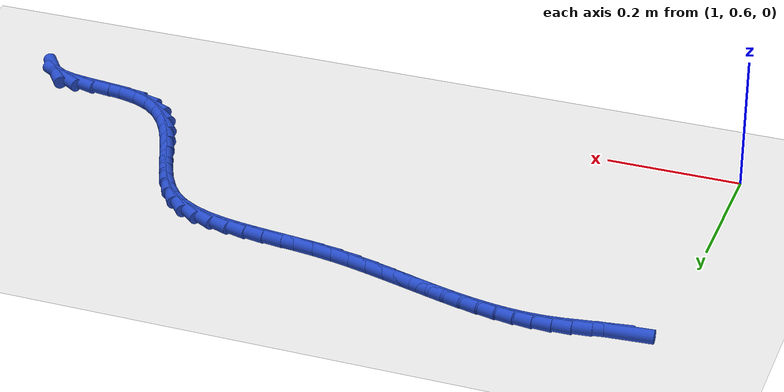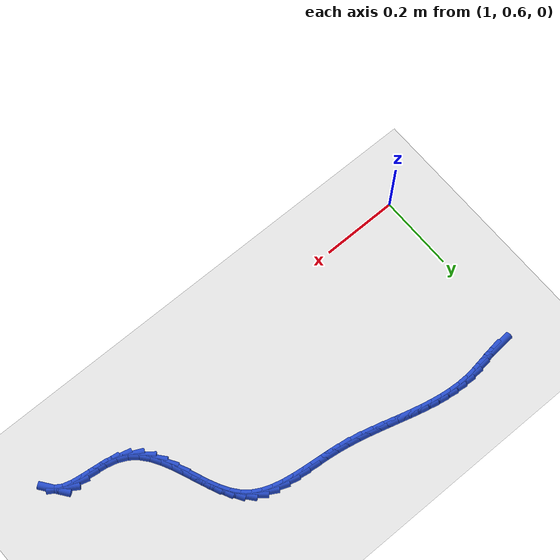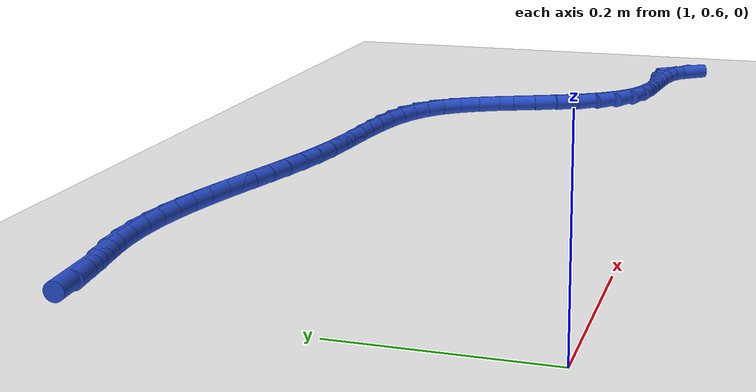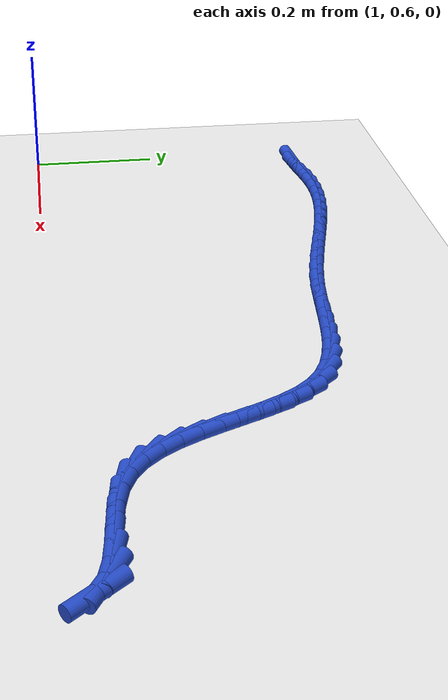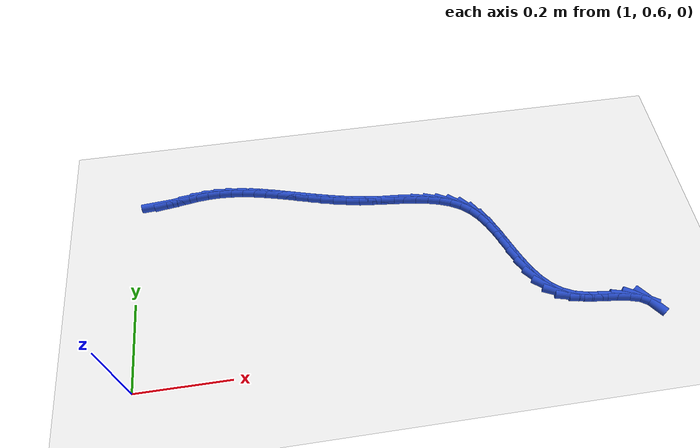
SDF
<sdf version="1.6">
 <world name="default">
  <model name="ground_plane">
   <static>1</static>
   <link name="link">
    <collision name="collision">
     <geometry><plane><normal>0 0 1</normal><size>100 100</size></plane></geometry>
     <surface><friction><ode><mu>100</mu><mu2>50</mu2></ode></friction></surface>
    </collision>
    <visual name="visual">
     <cast_shadows>0</cast_shadows>
     <geometry><plane><normal>0 0 1</normal><size>100 100</size></plane></geometry>
     <material>
      <script><uri>file://media/materials/scripts/gazebo.material</uri><name>Gazebo/WhiteGlow</name></script>
     </material>
    </visual>
   </link>
  </model>
  <model name="line">
   <link name="link_63">
    <pose>1.0494509088871486 1.0484057499562558 0.01 0 1.57 0.07689102487371006</pose>
    <collision name="collision">
     <geometry><cylinder><radius>0.01</radius><length>0.08</length></cylinder></geometry>
    </collision>
    <visual name="visual">
     <material>
      <script><name>Gazebo/Blue</name><uri>file://media/materials/scripts/gazebo.material</uri></script>
     </material>
     <geometry><cylinder><radius>0.01</radius><length>0.08</length></cylinder></geometry>
    </visual>
   </link>
   <link name="link_64">
    <pose>1.0771851384512288 1.0505424758903719 0.01 0 1.57 0.14625126549340506</pose>
    <collision name="collision">
     <geometry><cylinder><radius>0.01</radius><length>0.08</length></cylinder></geometry>
    </collision>
    <visual name="visual">
     <material>
      <script><name>Gazebo/Blue</name><uri>file://media/materials/scripts/gazebo.material</uri></script>
     </material>
     <geometry><cylinder><radius>0.01</radius><length>0.08</length></cylinder></geometry>
    </visual>
   </link>
   <link name="link_65">
    <pose>1.104709875993688 1.054596952545493 0.01 0 1.57 0.1519937386249445</pose>
    <collision name="collision">
     <geometry><cylinder><radius>0.01</radius><length>0.08</length></cylinder></geometry>
    </collision>
    <visual name="visual">
     <material>
      <script><name>Gazebo/Blue</name><uri>file://media/materials/scripts/gazebo.material</uri></script>
     </material>
     <geometry><cylinder><radius>0.01</radius><length>0.08</length></cylinder></geometry>
    </visual>
   </link>
   <link name="link_66">
    <pose>1.131992074109087 1.0587759063722615 0.01 0 1.57 0.09530232501402217</pose>
    <collision name="collision">
     <geometry><cylinder><radius>0.01</radius><length>0.08</length></cylinder></geometry>
    </collision>
    <visual name="visual">
     <material>
      <script><name>Gazebo/Blue</name><uri>file://media/materials/scripts/gazebo.material</uri></script>
     </material>
     <geometry><cylinder><radius>0.01</radius><length>0.08</length></cylinder></geometry>
    </visual>
   </link>
   <link name="link_67">
    <pose>1.1590022559856203 1.0613578611379793 0.01 0 1.57 0.01378947042779266</pose>
    <collision name="collision">
     <geometry><cylinder><radius>0.01</radius><length>0.08</length></cylinder></geometry>
    </collision>
    <visual name="visual">
     <material>
      <script><name>Gazebo/Blue</name><uri>file://media/materials/scripts/gazebo.material</uri></script>
     </material>
     <geometry><cylinder><radius>0.01</radius><length>0.08</length></cylinder></geometry>
    </visual>
   </link>
   <link name="link_68">
    <pose>1.185765928079853 1.0617269413966333 0.01 0 1.57 -0.059820578594192306</pose>
    <collision name="collision">
     <geometry><cylinder><radius>0.01</radius><length>0.08</length></cylinder></geometry>
    </collision>
    <visual name="visual">
     <material>
      <script><name>Gazebo/Blue</name><uri>file://media/materials/scripts/gazebo.material</uri></script>
     </material>
     <geometry><cylinder><radius>0.01</radius><length>0.08</length></cylinder></geometry>
    </visual>
   </link>
   <link name="link_69">
    <pose>1.2123517336011567 1.0601346633514965 0.01 0 1.57 -0.12320681849378456</pose>
    <collision name="collision">
     <geometry><cylinder><radius>0.01</radius><length>0.08</length></cylinder></geometry>
    </collision>
    <visual name="visual">
     <material>
      <script><name>Gazebo/Blue</name><uri>file://media/materials/scripts/gazebo.material</uri></script>
     </material>
     <geometry><cylinder><radius>0.01</radius><length>0.08</length></cylinder></geometry>
    </visual>
   </link>
   <link name="link_70">
    <pose>1.2388294732313987 1.0568558176043839 0.01 0 1.57 -0.17558293454779447</pose>
    <collision name="collision">
     <geometry><cylinder><radius>0.01</radius><length>0.08</length></cylinder></geometry>
    </collision>
    <visual name="visual">
     <material>
      <script><name>Gazebo/Blue</name><uri>file://media/materials/scripts/gazebo.material</uri></script>
     </material>
     <geometry><cylinder><radius>0.01</radius><length>0.08</length></cylinder></geometry>
    </visual>
   </link>
   <link name="link_71">
    <pose>1.265268947652444 1.0521651947571082 0.01 0 1.57 -0.2166939707750178</pose>
    <collision name="collision">
     <geometry><cylinder><radius>0.01</radius><length>0.08</length></cylinder></geometry>
    </collision>
    <visual name="visual">
     <material>
      <script><name>Gazebo/Blue</name><uri>file://media/materials/scripts/gazebo.material</uri></script>
     </material>
     <geometry><cylinder><radius>0.01</radius><length>0.08</length></cylinder></geometry>
    </visual>
   </link>
   <link name="link_72">
    <pose>1.29173995754616 1.046337585411485 0.01 0 1.57 -0.24663272659543328</pose>
    <collision name="collision">
     <geometry><cylinder><radius>0.01</radius><length>0.08</length></cylinder></geometry>
    </collision>
    <visual name="visual">
     <material>
      <script><name>Gazebo/Blue</name><uri>file://media/materials/scripts/gazebo.material</uri></script>
     </material>
     <geometry><cylinder><radius>0.01</radius><length>0.08</length></cylinder></geometry>
    </visual>
   </link>
   <link name="link_73">
    <pose>1.3183123035944124 1.0396477801693271 0.01 0 1.57 -0.2656788623500307</pose>
    <collision name="collision">
     <geometry><cylinder><radius>0.01</radius><length>0.08</length></cylinder></geometry>
    </collision>
    <visual name="visual">
     <material>
      <script><name>Gazebo/Blue</name><uri>file://media/materials/scripts/gazebo.material</uri></script>
     </material>
     <geometry><cylinder><radius>0.01</radius><length>0.08</length></cylinder></geometry>
    </visual>
   </link>
   <link name="link_74">
    <pose>1.3450557864790686 1.0323705696324492 0.01 0 1.57 -0.27418314501500374</pose>
    <collision name="collision">
     <geometry><cylinder><radius>0.01</radius><length>0.08</length></cylinder></geometry>
    </collision>
    <visual name="visual">
     <material>
      <script><name>Gazebo/Blue</name><uri>file://media/materials/scripts/gazebo.material</uri></script>
     </material>
     <geometry><cylinder><radius>0.01</radius><length>0.08</length></cylinder></geometry>
    </visual>
   </link>
   <link name="link_75">
    <pose>1.3720402068819952 1.0247807444026655 0.01 0 1.57 -0.27249920162824226</pose>
    <collision name="collision">
     <geometry><cylinder><radius>0.01</radius><length>0.08</length></cylinder></geometry>
    </collision>
    <visual name="visual">
     <material>
      <script><name>Gazebo/Blue</name><uri>file://media/materials/scripts/gazebo.material</uri></script>
     </material>
     <geometry><cylinder><radius>0.01</radius><length>0.08</length></cylinder></geometry>
    </visual>
   </link>
   <link name="link_76">
    <pose>1.3993353654850578 1.01715309508179 0.01 0 1.57 -0.26095645706120857</pose>
    <collision name="collision">
     <geometry><cylinder><radius>0.01</radius><length>0.08</length></cylinder></geometry>
    </collision>
    <visual name="visual">
     <material>
      <script><name>Gazebo/Blue</name><uri>file://media/materials/scripts/gazebo.material</uri></script>
     </material>
     <geometry><cylinder><radius>0.01</radius><length>0.08</length></cylinder></geometry>
    </visual>
   </link>
   <link name="link_77">
    <pose>1.4270110629701227 1.0097624122716364 0.01 0 1.57 -0.23986630572743528</pose>
    <collision name="collision">
     <geometry><cylinder><radius>0.01</radius><length>0.08</length></cylinder></geometry>
    </collision>
    <visual name="visual">
     <material>
      <script><name>Gazebo/Blue</name><uri>file://media/materials/scripts/gazebo.material</uri></script>
     </material>
     <geometry><cylinder><radius>0.01</radius><length>0.08</length></cylinder></geometry>
    </visual>
   </link>
   <link name="link_78">
    <pose>1.4551371000190574 1.0028834865740195 0.01 0 1.57 -0.20955457035731487</pose>
    <collision name="collision">
     <geometry><cylinder><radius>0.01</radius><length>0.08</length></cylinder></geometry>
    </collision>
    <visual name="visual">
     <material>
      <script><name>Gazebo/Blue</name><uri>file://media/materials/scripts/gazebo.material</uri></script>
     </material>
     <geometry><cylinder><radius>0.01</radius><length>0.08</length></cylinder></geometry>
    </visual>
   </link>
   <link name="link_79">
    <pose>1.4837832773137274 0.996791108590753 0.01 0 1.57 -0.17041409127283405</pose>
    <collision name="collision">
     <geometry><cylinder><radius>0.01</radius><length>0.08</length></cylinder></geometry>
    </collision>
    <visual name="visual">
     <material>
      <script><name>Gazebo/Blue</name><uri>file://media/materials/scripts/gazebo.material</uri></script>
     </material>
     <geometry><cylinder><radius>0.01</radius><length>0.08</length></cylinder></geometry>
    </visual>
   </link>
   <link name="link_80">
    <pose>1.5130193937705272 0.9917600657112566 0.01 0 1.57 -0.12876247739303198</pose>
    <collision name="collision">
     <geometry><cylinder><radius>0.01</radius><length>0.08</length></cylinder></geometry>
    </collision>
    <visual name="visual">
     <material>
      <script><name>Gazebo/Blue</name><uri>file://media/materials/scripts/gazebo.material</uri></script>
     </material>
     <geometry><cylinder><radius>0.01</radius><length>0.08</length></cylinder></geometry>
    </visual>
   </link>
   <link name="link_81">
    <pose>1.5428249680216395 0.9879008743432444 0.01 0 1.57 -0.10558018650871699</pose>
    <collision name="collision">
     <geometry><cylinder><radius>0.01</radius><length>0.08</length></cylinder></geometry>
    </collision>
    <visual name="visual">
     <material>
      <script><name>Gazebo/Blue</name><uri>file://media/materials/scripts/gazebo.material</uri></script>
     </material>
     <geometry><cylinder><radius>0.01</radius><length>0.08</length></cylinder></geometry>
    </visual>
   </link>
   <link name="link_82">
    <pose>1.5728471563177506 0.9847192954357206 0.01 0 1.57 -0.10486026286616132</pose>
    <collision name="collision">
     <geometry><cylinder><radius>0.01</radius><length>0.08</length></cylinder></geometry>
    </collision>
    <visual name="visual">
     <material>
      <script><name>Gazebo/Blue</name><uri>file://media/materials/scripts/gazebo.material</uri></script>
     </material>
     <geometry><cylinder><radius>0.01</radius><length>0.08</length></cylinder></geometry>
    </visual>
   </link>
   <link name="link_83">
    <pose>1.6026566498195347 0.9815819566206825 0.01 0 1.57 -0.12707270273821172</pose>
    <collision name="collision">
     <geometry><cylinder><radius>0.01</radius><length>0.08</length></cylinder></geometry>
    </collision>
    <visual name="visual">
     <material>
      <script><name>Gazebo/Blue</name><uri>file://media/materials/scripts/gazebo.material</uri></script>
     </material>
     <geometry><cylinder><radius>0.01</radius><length>0.08</length></cylinder></geometry>
    </visual>
   </link>
   <link name="link_84">
    <pose>1.6318241396876636 0.9778554855301265 0.01 0 1.57 -0.17435554841187317</pose>
    <collision name="collision">
     <geometry><cylinder><radius>0.01</radius><length>0.08</length></cylinder></geometry>
    </collision>
    <visual name="visual">
     <material>
      <script><name>Gazebo/Blue</name><uri>file://media/materials/scripts/gazebo.material</uri></script>
     </material>
     <geometry><cylinder><radius>0.01</radius><length>0.08</length></cylinder></geometry>
    </visual>
   </link>
   <link name="link_85">
    <pose>1.6599203170828107 0.9729065097960498 0.01 0 1.57 -0.25049032221753276</pose>
    <collision name="collision">
     <geometry><cylinder><radius>0.01</radius><length>0.08</length></cylinder></geometry>
    </collision>
    <visual name="visual">
     <material>
      <script><name>Gazebo/Blue</name><uri>file://media/materials/scripts/gazebo.material</uri></script>
     </material>
     <geometry><cylinder><radius>0.01</radius><length>0.08</length></cylinder></geometry>
    </visual>
   </link>
   <link name="link_86">
    <pose>1.6865158731656498 0.9661016570504487 0.01 0 1.57 -0.3603511647269643</pose>
    <collision name="collision">
     <geometry><cylinder><radius>0.01</radius><length>0.08</length></cylinder></geometry>
    </collision>
    <visual name="visual">
     <material>
      <script><name>Gazebo/Blue</name><uri>file://media/materials/scripts/gazebo.material</uri></script>
     </material>
     <geometry><cylinder><radius>0.01</radius><length>0.08</length></cylinder></geometry>
    </visual>
   </link>
   <link name="link_87">
    <pose>1.711181499096853 0.9568075549253208 0.01 0 1.57 -0.5079301098787188</pose>
    <collision name="collision">
     <geometry><cylinder><radius>0.01</radius><length>0.08</length></cylinder></geometry>
    </collision>
    <visual name="visual">
     <material>
      <script><name>Gazebo/Blue</name><uri>file://media/materials/scripts/gazebo.material</uri></script>
     </material>
     <geometry><cylinder><radius>0.01</radius><length>0.08</length></cylinder></geometry>
    </visual>
   </link>
   <link name="link_88">
    <pose>1.7334878860370946 0.944390831052663 0.01 0 1.57 -0.6919114306796224</pose>
    <collision name="collision">
     <geometry><cylinder><radius>0.01</radius><length>0.08</length></cylinder></geometry>
    </collision>
    <visual name="visual">
     <material>
      <script><name>Gazebo/Blue</name><uri>file://media/materials/scripts/gazebo.material</uri></script>
     </material>
     <geometry><cylinder><radius>0.01</radius><length>0.08</length></cylinder></geometry>
    </visual>
   </link>
   <link name="link_89">
    <pose>1.753006237021707 0.92821881067966 0.01 0 1.57 -0.8831054806427387</pose>
    <collision name="collision">
     <geometry><cylinder><radius>0.01</radius><length>0.08</length></cylinder></geometry>
    </collision>
    <visual name="visual">
     <material>
      <script><name>Gazebo/Blue</name><uri>file://media/materials/scripts/gazebo.material</uri></script>
     </material>
     <geometry><cylinder><radius>0.01</radius><length>0.08</length></cylinder></geometry>
    </visual>
   </link>
   <link name="link_90">
    <pose>1.769585042213328 0.9080367235028199 0.01 0 1.57 -1.0255216980496726</pose>
    <collision name="collision">
     <geometry><cylinder><radius>0.01</radius><length>0.08</length></cylinder></geometry>
    </collision>
    <visual name="visual">
     <material>
      <script><name>Gazebo/Blue</name><uri>file://media/materials/scripts/gazebo.material</uri></script>
     </material>
     <geometry><cylinder><radius>0.01</radius><length>0.08</length></cylinder></geometry>
    </visual>
   </link>
   <link name="link_91">
    <pose>1.7838075968904927 0.8845912381436436 0.01 0 1.57 -1.1174080858749456</pose>
    <collision name="collision">
     <geometry><cylinder><radius>0.01</radius><length>0.08</length></cylinder></geometry>
    </collision>
    <visual name="visual">
     <material>
      <script><name>Gazebo/Blue</name><uri>file://media/materials/scripts/gazebo.material</uri></script>
     </material>
     <geometry><cylinder><radius>0.01</radius><length>0.08</length></cylinder></geometry>
    </visual>
   </link>
   <link name="link_92">
    <pose>1.7963775362458174 0.8587930300760428 0.01 0 1.57 -1.1675629746875387</pose>
    <collision name="collision">
     <geometry><cylinder><radius>0.01</radius><length>0.08</length></cylinder></geometry>
    </collision>
    <visual name="visual">
     <material>
      <script><name>Gazebo/Blue</name><uri>file://media/materials/scripts/gazebo.material</uri></script>
     </material>
     <geometry><cylinder><radius>0.01</radius><length>0.08</length></cylinder></geometry>
    </visual>
   </link>
   <link name="link_93">
    <pose>1.8079984954719195 0.8315527747739289 0.01 0 1.57 -1.182030607912426</pose>
    <collision name="collision">
     <geometry><cylinder><radius>0.01</radius><length>0.08</length></cylinder></geometry>
    </collision>
    <visual name="visual">
     <material>
      <script><name>Gazebo/Blue</name><uri>file://media/materials/scripts/gazebo.material</uri></script>
     </material>
     <geometry><cylinder><radius>0.01</radius><length>0.08</length></cylinder></geometry>
    </visual>
   </link>
   <link name="link_94">
    <pose>1.8193741097614184 0.8037811477112142 0.01 0 1.57 -1.1629986404437453</pose>
    <collision name="collision">
     <geometry><cylinder><radius>0.01</radius><length>0.08</length></cylinder></geometry>
    </collision>
    <visual name="visual">
     <material>
      <script><name>Gazebo/Blue</name><uri>file://media/materials/scripts/gazebo.material</uri></script>
     </material>
     <geometry><cylinder><radius>0.01</radius><length>0.08</length></cylinder></geometry>
    </visual>
   </link>
   <link name="link_95">
    <pose>1.8312080143069305 0.7763888243618104 0.01 0 1.57 -1.1088463126970967</pose>
    <collision name="collision">
     <geometry><cylinder><radius>0.01</radius><length>0.08</length></cylinder></geometry>
    </collision>
    <visual name="visual">
     <material>
      <script><name>Gazebo/Blue</name><uri>file://media/materials/scripts/gazebo.material</uri></script>
     </material>
     <geometry><cylinder><radius>0.01</radius><length>0.08</length></cylinder></geometry>
    </visual>
   </link>
   <link name="link_96">
    <pose>1.8442038443010735 0.7502864801996292 0.01 0 1.57 -1.0145219595493469</pose>
    <collision name="collision">
     <geometry><cylinder><radius>0.01</radius><length>0.08</length></cylinder></geometry>
    </collision>
    <visual name="visual">
     <material>
      <script><name>Gazebo/Blue</name><uri>file://media/materials/scripts/gazebo.material</uri></script>
     </material>
     <geometry><cylinder><radius>0.01</radius><length>0.08</length></cylinder></geometry>
    </visual>
   </link>
   <link name="link_97">
    <pose>1.859065234936465 0.7263847906985821 0.01 0 1.57 -0.8730767634041636</pose>
    <collision name="collision">
     <geometry><cylinder><radius>0.01</radius><length>0.08</length></cylinder></geometry>
    </collision>
    <visual name="visual">
     <material>
      <script><name>Gazebo/Blue</name><uri>file://media/materials/scripts/gazebo.material</uri></script>
     </material>
     <geometry><cylinder><radius>0.01</radius><length>0.08</length></cylinder></geometry>
    </visual>
   </link>
   <link name="link_98">
    <pose>1.8764958214057235 0.7055944313325813 0.01 0 1.57 -0.6807675752432948</pose>
    <collision name="collision">
     <geometry><cylinder><radius>0.01</radius><length>0.08</length></cylinder></geometry>
    </collision>
    <visual name="visual">
     <material>
      <script><name>Gazebo/Blue</name><uri>file://media/materials/scripts/gazebo.material</uri></script>
     </material>
     <geometry><cylinder><radius>0.01</radius><length>0.08</length></cylinder></geometry>
    </visual>
   </link>
   <link name="link_99">
    <pose>1.8971992389014658 0.688826077575538 0.01 0 1.57 -0.44895020461038554</pose>
    <collision name="collision">
     <geometry><cylinder><radius>0.01</radius><length>0.08</length></cylinder></geometry>
    </collision>
    <visual name="visual">
     <material>
      <script><name>Gazebo/Blue</name><uri>file://media/materials/scripts/gazebo.material</uri></script>
     </material>
     <geometry><cylinder><radius>0.01</radius><length>0.08</length></cylinder></geometry>
    </visual>
   </link>
   <link name="link_100">
    <pose>1.9218434087178813 0.6769534785569612 0.01 0 1.57 -0.25369654026603444</pose>
    <collision name="collision">
     <geometry><cylinder><radius>0.01</radius><length>0.08</length></cylinder></geometry>
    </collision>
    <visual name="visual">
     <material>
      <script><name>Gazebo/Blue</name><uri>file://media/materials/scripts/gazebo.material</uri></script>
     </material>
     <geometry><cylinder><radius>0.01</radius><length>0.08</length></cylinder></geometry>
    </visual>
   </link>
   <link name="link_101">
    <pose>1.9499505366237224 0.6696657721501734 0.01 0 1.57 -0.14762970644141452</pose>
    <collision name="collision">
     <geometry><cylinder><radius>0.01</radius><length>0.08</length></cylinder></geometry>
    </collision>
    <visual name="visual">
     <material>
      <script><name>Gazebo/Blue</name><uri>file://media/materials/scripts/gazebo.material</uri></script>
     </material>
     <geometry><cylinder><radius>0.01</radius><length>0.08</length></cylinder></geometry>
    </visual>
   </link>
   <link name="link_102">
    <pose>1.9796813979768142 0.6652444468133586 0.01 0 1.57 -0.11349956246133004</pose>
    <collision name="collision">
     <geometry><cylinder><radius>0.01</radius><length>0.08</length></cylinder></geometry>
    </collision>
    <visual name="visual">
     <material>
      <script><name>Gazebo/Blue</name><uri>file://media/materials/scripts/gazebo.material</uri></script>
     </material>
     <geometry><cylinder><radius>0.01</radius><length>0.08</length></cylinder></geometry>
    </visual>
   </link>
   <link name="link_103">
    <pose>2.00911750839552 0.6618890404878012 0.01 0 1.57 -0.14912410558617173</pose>
    <collision name="collision">
     <geometry><cylinder><radius>0.01</radius><length>0.08</length></cylinder></geometry>
    </collision>
    <visual name="visual">
     <material>
      <script><name>Gazebo/Blue</name><uri>file://media/materials/scripts/gazebo.material</uri></script>
     </material>
     <geometry><cylinder><radius>0.01</radius><length>0.08</length></cylinder></geometry>
    </visual>
   </link>
   <link name="link_104">
    <pose>2.0363403834982043 0.6577990911147856 0.01 0 1.57 -0.27939962281178493</pose>
    <collision name="collision">
     <geometry><cylinder><radius>0.01</radius><length>0.08</length></cylinder></geometry>
    </collision>
    <visual name="visual">
     <material>
      <script><name>Gazebo/Blue</name><uri>file://media/materials/scripts/gazebo.material</uri></script>
     </material>
     <geometry><cylinder><radius>0.01</radius><length>0.08</length></cylinder></geometry>
    </visual>
   </link>
   <link name="link_105">
    <pose>2.0594315389032283 0.6511741366355961 0.01 0 1.57 -0.5587065827435961</pose>
    <collision name="collision">
     <geometry><cylinder><radius>0.01</radius><length>0.08</length></cylinder></geometry>
    </collision>
    <visual name="visual">
     <material>
      <script><name>Gazebo/Blue</name><uri>file://media/materials/scripts/gazebo.material</uri></script>
     </material>
     <geometry><cylinder><radius>0.01</radius><length>0.08</length></cylinder></geometry>
    </visual>
   </link>
   <link name="link_106">
    <pose>2.0766797609583967 0.6403914247832548 0.01 0 1.57 -0.928361050173995</pose>
    <collision name="collision">
     <geometry><cylinder><radius>0.01</radius><length>0.08</length></cylinder></geometry>
    </collision>
    <visual name="visual">
     <material>
      <script><name>Gazebo/Blue</name><uri>file://media/materials/scripts/gazebo.material</uri></script>
     </material>
     <geometry><cylinder><radius>0.01</radius><length>0.08</length></cylinder></geometry>
    </visual>
   </link>
  </model>
 </world>
</sdf>
